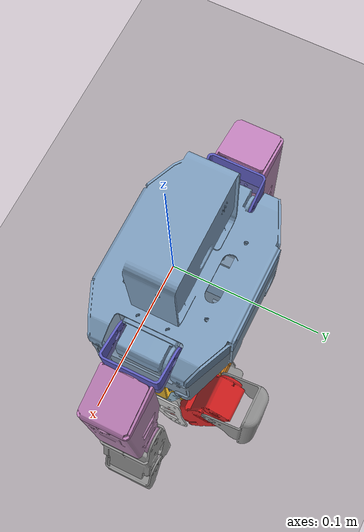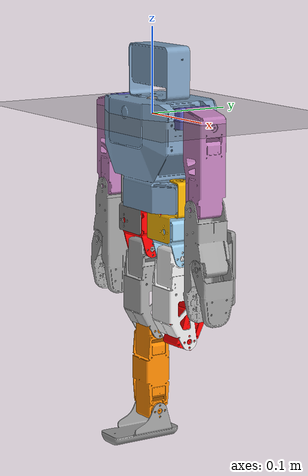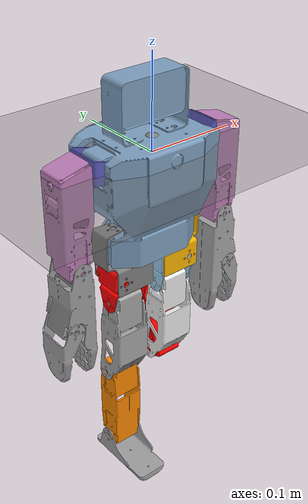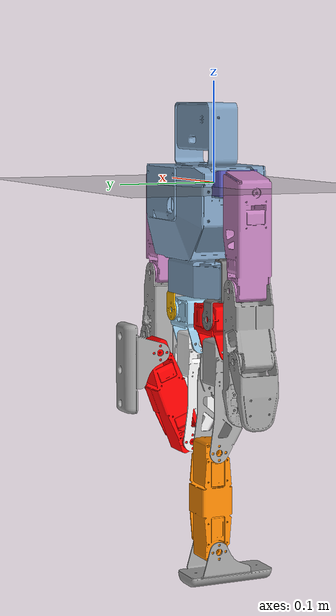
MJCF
<mujoco model="assembly_1">
  <option iterations="50" timestep="0.001" solver="PGS" gravity="0 0 -9.81" />

  <compiler angle="radian" meshdir="meshes" eulerseq="zyx" autolimits="true" />

  <default>
    <joint limited="true" damping="0.01" armature="0.01" frictionloss="0.01" />
    <geom condim="4" contype="1" conaffinity="15" friction="0.9 0.2 0.2" solref="0.001 2" />
    <motor ctrllimited="true" />
    <equality solref="0.001 2" />
    <default class="visualgeom">
      <geom material="visualgeom" condim="1" contype="0" conaffinity="0" />
    </default>
  </default>

  <asset>
    <mesh name="Z-BOT2_MASTER-BODY-SKELETON" file="Z-BOT2_MASTER-BODY-SKELETON.stl" />
    <mesh name="Z-BOT2-MASTER-SHOULDER2" file="Z-BOT2-MASTER-SHOULDER2.stl" />
    <mesh name="Z-BOT2-MASTER-SHOULDER2_1" file="Z-BOT2-MASTER-SHOULDER2_1.stl" />
    <mesh name="U-HIP_1" file="U-HIP_1.stl" />
    <mesh name="U-HIP" file="U-HIP.stl" />
    <mesh name="FK-AP-019-25T_11_5" file="FK-AP-019-25T_11_5.stl" />
    <mesh name="FK-AP-019-25T_11_16" file="FK-AP-019-25T_11_16.stl" />
    <mesh name="WJ-DP00-0002-FK-AP-020_7_10" file="WJ-DP00-0002-FK-AP-020_7_10.stl" />
    <mesh name="SJ-WK00-0021TOPCABINETCASE_104_7" file="SJ-WK00-0021TOPCABINETCASE_104_7.stl" />
    <mesh name="SJ-WK00-0023BOTTOMCASE_12_12" file="SJ-WK00-0023BOTTOMCASE_12_12.stl" />
    <mesh name="SJ-WK00-0023BOTTOMCASE_12_8" file="SJ-WK00-0023BOTTOMCASE_12_8.stl" />
    <mesh name="L-ARM_1" file="L-ARM_1.stl" />
    <mesh name="R-ARM-1" file="R-ARM-1.stl" />
    <mesh name="SJ-WK00-0023BOTTOMCASE_12_13" file="SJ-WK00-0023BOTTOMCASE_12_13.stl" />
    <mesh name="WJ-DP00-0002-FK-AP-020_7_8" file="WJ-DP00-0002-FK-AP-020_7_8.stl" />
    <mesh name="FINGER_1" file="FINGER_1.stl" />
    <mesh name="FINGER_1_1" file="FINGER_1_1.stl" />
    <mesh name="FOOT_1" file="FOOT_1.stl" />
    <mesh name="FOOT" file="FOOT.stl" />
    <texture name="texplane" type="2d" builtin="checker" rgb1=".0 .0 .0" rgb2=".8 .8 .8" width="100" height="100" />
    <material name="matplane" reflectance="0." texture="texplane" texrepeat="1 1" texuniform="true" />
    <material name="visualgeom" rgba="0.5 0.9 0.2 1" />
  </asset>

  <worldbody>
    <light directional="true" diffuse="0.4 0.4 0.4" specular="0.1 0.1 0.1" pos="0 0 5.0" dir="0 0 -1" castshadow="false" />
    <light directional="true" diffuse="0.6 0.6 0.6" specular="0.2 0.2 0.2" pos="0 0 4" dir="0 0 -1" />
    <geom name="ground" type="plane" pos="0 0 0" size="100 100 0.001" quat="1 0 0 0" material="matplane" condim="3" conaffinity="15" />
    <camera name="fixed" pos="0 -3.0 0.5" xyaxes="1 0 0 0 0 1" />
    <camera name="track" mode="trackcom" pos="0 -3.0 0.5" xyaxes="1 0 0 0 0 1" />
    <body name="root" pos="0 0 0.01" quat="1 0 0 0">
      <freejoint name="root" />
      <site name="imu" size="0.01" pos="0 0 0" />
      <body name="base" pos="0 0 0" quat="1 0 0 0">
        <geom type="mesh" rgba="0.494118 0.623529 0.74902 1" mesh="Z-BOT2_MASTER-BODY-SKELETON" contype="1" conaffinity="0" density="0" group="1" class="visualgeom" />
        <geom type="mesh" rgba="0.494118 0.623529 0.74902 1" mesh="Z-BOT2_MASTER-BODY-SKELETON" />
        <body name="Z-BOT2-MASTER-SHOULDER2" pos="-0.055995 0.0277897 -0.00952781" quat="0.707107 0.707107 0 0">
          <inertial pos="-0.012788 0.00137412 0.0188002" quat="0.707107 0 0 0.707107" mass="0.00834974" diaginertia="2.70202e-06 2.57079e-06 1.03341e-06" />
          <joint name="right_shoulder_yaw" pos="0 0 0" axis="0 0 1" range="-1.22173 0.349066" actuatorfrcrange="-80 80" />
          <geom type="mesh" rgba="0.364706 0.360784 0.74902 1" mesh="Z-BOT2-MASTER-SHOULDER2" contype="1" conaffinity="0" density="0" group="1" class="visualgeom" />
          <geom type="mesh" rgba="0.364706 0.360784 0.74902 1" mesh="Z-BOT2-MASTER-SHOULDER2" />
          <body name="FK-AP-019-25T_11_5" pos="-0.019845 -0.0049 0.0188" quat="0.707107 0 0.707107 0">
            <inertial pos="-0.000298648 -0.0381355 -0.0187198" quat="0.493042 0.504234 -0.510469 0.492016" mass="0.100412" diaginertia="0.000138677 0.00013787 2.78348e-05" />
            <joint name="right_shoulder_pitch" pos="0 0 0" axis="0 0 1" range="-3.14159 3.14159" actuatorfrcrange="-80 80" />
            <geom type="mesh" rgba="0.74902 0.498039 0.72549 1" mesh="FK-AP-019-25T_11_5" contype="1" conaffinity="0" density="0" group="1" class="visualgeom" />
            <geom type="mesh" rgba="0.74902 0.498039 0.72549 1" mesh="FK-AP-019-25T_11_5" />
            <body name="L-ARM_1" pos="0.0184908 -0.0930056 -0.0183007" quat="0.707107 -0.000415145 -0.707107 -0.000415145">
              <inertial pos="-0.000124773 -0.0571084 0.0194116" quat="0.702587 0.708268 0.0124887 0.0676202" mass="0.09309" diaginertia="0.000111127 0.000103636 2.81822e-05" />
              <joint name="right_elbow_yaw" pos="0 0 0" axis="0 0 1" range="-1.5708 2.0944" actuatorfrcrange="-80 80" />
              <geom type="mesh" rgba="0.627451 0.627451 0.627451 1" mesh="L-ARM_1" contype="1" conaffinity="0" density="0" group="1" class="visualgeom" />
              <geom type="mesh" rgba="0.627451 0.627451 0.627451 1" mesh="L-ARM_1" />
              <body name="FINGER_1" pos="-0.0114518 -0.0663583 0.03704" quat="6.96153e-08 -1 0 0">
                <inertial pos="-0.011478 0.0335721 0.0187996" quat="0.707101 0.707109 -0.00144377 -0.00144376" mass="0.0234852" diaginertia="1.10011e-05 7.76039e-06 4.54686e-06" />
                <joint name="right_gripper" pos="0 0 0" axis="0 0 1" range="-0.349066 0.872665" actuatorfrcrange="-80 80" />
                <geom type="mesh" rgba="0.627451 0.627451 0.627451 1" mesh="FINGER_1" contype="1" conaffinity="0" density="0" group="1" class="visualgeom" />
                <geom type="mesh" rgba="0.627451 0.627451 0.627451 1" mesh="FINGER_1" />
              </body>
            </body>
          </body>
        </body>
        <body name="Z-BOT2-MASTER-SHOULDER2_1" pos="0.055995 0.0277897 -0.00952781" quat="0.707107 0.707107 0 0">
          <inertial pos="0.012788 0.00137412 0.0187998" quat="0.707107 0 0 0.707107" mass="0.00834974" diaginertia="2.70202e-06 2.57079e-06 1.03341e-06" />
          <joint name="left_shoulder_yaw" pos="0 0 0" axis="0 0 1" range="-0.349066 1.22173" actuatorfrcrange="-80 80" />
          <geom type="mesh" rgba="0.364706 0.360784 0.74902 1" mesh="Z-BOT2-MASTER-SHOULDER2_1" contype="1" conaffinity="0" density="0" group="1" class="visualgeom" />
          <geom type="mesh" rgba="0.364706 0.360784 0.74902 1" mesh="Z-BOT2-MASTER-SHOULDER2_1" />
          <body name="FK-AP-019-25T_11_16" pos="0.019845 -0.0049 0.0188" quat="-1.64085e-08 0.707107 -1.64085e-08 -0.707107">
            <inertial pos="-0.000262879 0.0381358 -0.0187109" quat="0.503743 0.492192 -0.49304 0.510786" mass="0.100412" diaginertia="0.000138674 0.000137872 2.78361e-05" />
            <joint name="left_shoulder_pitch" pos="0 0 0" axis="0 0 1" range="-3.14159 3.14159" actuatorfrcrange="-80 80" />
            <geom type="mesh" rgba="0.74902 0.498039 0.72549 1" mesh="FK-AP-019-25T_11_16" contype="1" conaffinity="0" density="0" group="1" class="visualgeom" />
            <geom type="mesh" rgba="0.74902 0.498039 0.72549 1" mesh="FK-AP-019-25T_11_16" />
            <body name="R-ARM-1" pos="0.0186 0.0929838 -0.0183006" quat="1.64085e-08 -0.707107 1.64085e-08 0.707107">
              <inertial pos="0.000115698 -0.0571116 0.0194782" quat="0.704175 0.706724 -0.013208 -0.067114" mass="0.0930899" diaginertia="0.000111135 0.000103623 2.81371e-05" />
              <joint name="left_elbow_yaw" pos="0 0 0" axis="0 0 1" range="-2.0944 1.5708" actuatorfrcrange="-80 80" />
              <geom type="mesh" rgba="0.647059 0.647059 0.647059 1" mesh="R-ARM-1" contype="1" conaffinity="0" density="0" group="1" class="visualgeom" />
              <geom type="mesh" rgba="0.647059 0.647059 0.647059 1" mesh="R-ARM-1" />
              <body name="FINGER_1_1" pos="0.0114518 -0.0663583 0.03614" quat="6.96153e-08 -1 0 0">
                <inertial pos="0.0107265 0.0338197 0.0187997" quat="0.707089 0.707081 0.00558986 0.00558992" mass="0.0234852" diaginertia="1.10409e-05 7.76039e-06 4.50715e-06" />
                <joint name="left_gripper" pos="0 0 0" axis="0 0 1" range="-0.872665 0.349066" actuatorfrcrange="-80 80" />
                <geom type="mesh" rgba="0.627451 0.627451 0.627451 1" mesh="FINGER_1_1" contype="1" conaffinity="0" density="0" group="1" class="visualgeom" />
                <geom type="mesh" rgba="0.627451 0.627451 0.627451 1" mesh="FINGER_1_1" />
              </body>
            </body>
          </body>
        </body>
        <body name="U-HIP_1" pos="-0.0430082 0.00764973 -0.121818">
          <inertial pos="-0.00115269 -0.00439829 0.00200381" quat="0.921256 -0.220575 -0.207866 0.243773" mass="0.0163312" diaginertia="1.19463e-05 1.0538e-05 4.3781e-06" />
          <joint name="right_hip_roll" pos="0 0 0" axis="0 0 1" range="-1.0472 1.0472" actuatorfrcrange="-80 80" />
          <geom type="mesh" rgba="0.498039 0.498039 0.498039 1" mesh="U-HIP_1" contype="1" conaffinity="0" density="0" group="1" class="visualgeom" />
          <geom type="mesh" rgba="0.498039 0.498039 0.498039 1" mesh="U-HIP_1" />
          <body name="WJ-DP00-0002-FK-AP-020_7_10" pos="-3.37375e-05 0.0186996 -0.019" quat="0.707107 -0.707106 -0.000637873 0.000637873">
            <inertial pos="0.0127214 0.00504099 -0.0189626" quat="-0.130136 0.695377 -0.127713 0.69513" mass="0.042114" diaginertia="1.49345e-05 1.45211e-05 1.11976e-05" />
            <joint name="right_hip_yaw" pos="0 0 0" axis="0 0 1" range="-0.174533 1.91986" actuatorfrcrange="-80 80" />
            <geom type="mesh" rgba="1 0 0 1" mesh="WJ-DP00-0002-FK-AP-020_7_10" contype="1" conaffinity="0" density="0" group="1" class="visualgeom" />
            <geom type="mesh" rgba="1 0 0 1" mesh="WJ-DP00-0002-FK-AP-020_7_10" />
            <body name="SJ-WK00-0023BOTTOMCASE_12_12" pos="0.0302 0.032 -0.0187" quat="0.707107 -1.89469e-08 0.707107 1.89469e-08">
              <inertial pos="0.00209202 0.035417 -0.0187783" quat="0.701644 0.711918 -0.0202304 -0.0214378" mass="0.0681156" diaginertia="7.02957e-05 6.20592e-05 2.05083e-05" />
              <joint name="right_hip_pitch" pos="0 0 0" axis="0 0 1" range="-1.74533 1.8326" actuatorfrcrange="-80 80" />
              <geom type="mesh" rgba="0.647059 0.647059 0.647059 1" mesh="SJ-WK00-0023BOTTOMCASE_12_12" contype="1" conaffinity="0" density="0" group="1" class="visualgeom" />
              <geom type="mesh" rgba="0.647059 0.647059 0.647059 1" mesh="SJ-WK00-0023BOTTOMCASE_12_12" />
              <body name="SJ-WK00-0023BOTTOMCASE_12_13" pos="-0.01 0.1 0.00046">
                <inertial pos="9.44992e-05 0.0499999 -0.0190611" quat="0.707107 0.707107 -0.00046668 -0.00046668" mass="0.0813252" diaginertia="0.000116138 0.000110882 1.96816e-05" />
                <joint name="right_knee_pitch" pos="0 0 0" axis="0 0 1" range="-0.174533 2.96706" actuatorfrcrange="-80 80" />
                <geom type="mesh" rgba="0.972549 0.529412 0.00392157 1" mesh="SJ-WK00-0023BOTTOMCASE_12_13" contype="1" conaffinity="0" density="0" group="1" class="visualgeom" />
                <geom type="mesh" rgba="0.972549 0.529412 0.00392157 1" mesh="SJ-WK00-0023BOTTOMCASE_12_13" />
                <body name="FOOT_1" pos="0.000188998 0.0999998 1.34679e-09" quat="2.32051e-08 -1 0 0">
                  <inertial pos="0.0144604 -0.0260775 0.0187" quat="0.504353 0.50362 0.49568 0.496282" mass="0.0548319" diaginertia="4.02044e-05 3.53499e-05 1.08945e-05" />
                  <joint name="right_ankle_pitch" pos="0 0 0" axis="0 0 1" range="-1.5708 1.5708" actuatorfrcrange="-80 80" />
                  <geom type="mesh" rgba="0.627451 0.627451 0.627451 1" mesh="FOOT_1" contype="1" conaffinity="0" density="0" group="1" class="visualgeom" />
                  <geom type="mesh" rgba="0.627451 0.627451 0.627451 1" mesh="FOOT_1" />
                </body>
              </body>
            </body>
          </body>
        </body>
        <body name="U-HIP" pos="0.0428682 0.00764973 -0.121818">
          <inertial pos="0.00116062 -0.0043962 0.00200381" quat="0.921476 -0.220762 0.207667 -0.242942" mass="0.0163312" diaginertia="1.19463e-05 1.0538e-05 4.3781e-06" />
          <joint name="left_hip_roll" pos="0 0 0" axis="0 0 1" range="-1.0472 1.0472" actuatorfrcrange="-80 80" />
          <geom type="mesh" rgba="0.980392 0.713726 0.00392157 1" mesh="U-HIP" contype="1" conaffinity="0" density="0" group="1" class="visualgeom" />
          <geom type="mesh" rgba="0.980392 0.713726 0.00392157 1" mesh="U-HIP" />
          <body name="SJ-WK00-0021TOPCABINETCASE_104_7" pos="0 0.0186997 -0.019" quat="0.707107 -0.707107 0 0">
            <inertial pos="-0.0127214 0.0050623 -0.0189626" quat="-0.130174 0.694666 -0.132585 0.694921" mass="0.042114" diaginertia="1.49265e-05 1.452e-05 1.11885e-05" />
            <joint name="left_hip_yaw" pos="0 0 0" axis="0 0 1" range="-1.91986 0.174533" actuatorfrcrange="-80 80" />
            <geom type="mesh" rgba="0.615686 0.811765 0.929412 1" mesh="SJ-WK00-0021TOPCABINETCASE_104_7" contype="1" conaffinity="0" density="0" group="1" class="visualgeom" />
            <geom type="mesh" rgba="0.615686 0.811765 0.929412 1" mesh="SJ-WK00-0021TOPCABINETCASE_104_7" />
            <body name="SJ-WK00-0023BOTTOMCASE_12_8" pos="-0.0302 0.032 -0.0187" quat="0.5 0.5 -0.5 -0.5">
              <inertial pos="-0.035417 -0.00207884 -0.0189758" quat="0.483211 0.486671 0.515854 0.513374" mass="0.0681156" diaginertia="7.02906e-05 6.20557e-05 2.05094e-05" />
              <joint name="left_hip_pitch" pos="0 0 0" axis="0 0 1" range="-1.8326 1.74533" actuatorfrcrange="-80 80" />
              <geom type="mesh" rgba="0.917647 0.917647 0.917647 1" mesh="SJ-WK00-0023BOTTOMCASE_12_8" contype="1" conaffinity="0" density="0" group="1" class="visualgeom" />
              <geom type="mesh" rgba="0.917647 0.917647 0.917647 1" mesh="SJ-WK00-0023BOTTOMCASE_12_8" />
              <body name="WJ-DP00-0002-FK-AP-020_7_8" pos="-0.1 0.01 -5.99991e-05" quat="1 4.64102e-08 0 0">
                <inertial pos="0.0467383 0.0177632 -0.0190611" quat="0.403192 0.403192 0.580893 0.580893" mass="0.0813252" diaginertia="0.000115585 0.000110882 2.02347e-05" />
                <joint name="left_knee_pitch" pos="0 0 0" axis="0 0 1" range="-0.174533 2.96706" actuatorfrcrange="-80 80" />
                <geom type="mesh" rgba="1 0 0 1" mesh="WJ-DP00-0002-FK-AP-020_7_8" contype="1" conaffinity="0" density="0" group="1" class="visualgeom" />
                <geom type="mesh" rgba="1 0 0 1" mesh="WJ-DP00-0002-FK-AP-020_7_8" />
                <body name="FOOT" pos="0.0934766 0.0355265 3.3477e-11" quat="1.64085e-08 -0.707107 0.707107 1.64085e-08">
                  <inertial pos="-0.026105 0.0144108 0.0187" quat="0.70708 0.70708 0.00611849 0.00611849" mass="0.0548319" diaginertia="4.02001e-05 3.535e-05 1.08986e-05" />
                  <joint name="left_ankle__pitch" pos="0 0 0" axis="0 0 1" range="-1.5708 1.5708" actuatorfrcrange="-80 80" />
                  <geom type="mesh" rgba="0.627451 0.627451 0.627451 1" mesh="FOOT" contype="1" conaffinity="0" density="0" group="1" class="visualgeom" />
                  <geom type="mesh" rgba="0.627451 0.627451 0.627451 1" mesh="FOOT" />
                </body>
              </body>
            </body>
          </body>
        </body>
      </body>
    </body>
  </worldbody>

  <actuator>
    <motor name="right_shoulder_yaw" joint="right_shoulder_yaw" ctrllimited="true" ctrlrange="-80 80" gear="1" />
    <motor name="right_shoulder_pitch" joint="right_shoulder_pitch" ctrllimited="true" ctrlrange="-80 80" gear="1" />
    <motor name="right_elbow_yaw" joint="right_elbow_yaw" ctrllimited="true" ctrlrange="-80 80" gear="1" />
    <motor name="right_gripper" joint="right_gripper" ctrllimited="true" ctrlrange="-80 80" gear="1" />
    <motor name="left_shoulder_yaw" joint="left_shoulder_yaw" ctrllimited="true" ctrlrange="-80 80" gear="1" />
    <motor name="left_shoulder_pitch" joint="left_shoulder_pitch" ctrllimited="true" ctrlrange="-80 80" gear="1" />
    <motor name="left_elbow_yaw" joint="left_elbow_yaw" ctrllimited="true" ctrlrange="-80 80" gear="1" />
    <motor name="left_gripper" joint="left_gripper" ctrllimited="true" ctrlrange="-80 80" gear="1" />
    <motor name="right_hip_roll" joint="right_hip_roll" ctrllimited="true" ctrlrange="-80 80" gear="1" />
    <motor name="right_hip_yaw" joint="right_hip_yaw" ctrllimited="true" ctrlrange="-80 80" gear="1" />
    <motor name="right_hip_pitch" joint="right_hip_pitch" ctrllimited="true" ctrlrange="-80 80" gear="1" />
    <motor name="right_knee_pitch" joint="right_knee_pitch" ctrllimited="true" ctrlrange="-80 80" gear="1" />
    <motor name="right_ankle_pitch" joint="right_ankle_pitch" ctrllimited="true" ctrlrange="-80 80" gear="1" />
    <motor name="left_hip_roll" joint="left_hip_roll" ctrllimited="true" ctrlrange="-80 80" gear="1" />
    <motor name="left_hip_yaw" joint="left_hip_yaw" ctrllimited="true" ctrlrange="-80 80" gear="1" />
    <motor name="left_hip_pitch" joint="left_hip_pitch" ctrllimited="true" ctrlrange="-80 80" gear="1" />
    <motor name="left_knee_pitch" joint="left_knee_pitch" ctrllimited="true" ctrlrange="-80 80" gear="1" />
    <motor name="left_ankle__pitch" joint="left_ankle__pitch" ctrllimited="true" ctrlrange="-80 80" gear="1" />
  </actuator>

  <sensor>
    <actuatorpos name="right_shoulder_yaw_p" actuator="right_shoulder_yaw" />
    <actuatorvel name="right_shoulder_yaw_v" actuator="right_shoulder_yaw" />
    <actuatorfrc name="right_shoulder_yaw_f" actuator="right_shoulder_yaw" noise="0.001" />
    <actuatorpos name="right_shoulder_pitch_p" actuator="right_shoulder_pitch" />
    <actuatorvel name="right_shoulder_pitch_v" actuator="right_shoulder_pitch" />
    <actuatorfrc name="right_shoulder_pitch_f" actuator="right_shoulder_pitch" noise="0.001" />
    <actuatorpos name="right_elbow_yaw_p" actuator="right_elbow_yaw" />
    <actuatorvel name="right_elbow_yaw_v" actuator="right_elbow_yaw" />
    <actuatorfrc name="right_elbow_yaw_f" actuator="right_elbow_yaw" noise="0.001" />
    <actuatorpos name="right_gripper_p" actuator="right_gripper" />
    <actuatorvel name="right_gripper_v" actuator="right_gripper" />
    <actuatorfrc name="right_gripper_f" actuator="right_gripper" noise="0.001" />
    <actuatorpos name="left_shoulder_yaw_p" actuator="left_shoulder_yaw" />
    <actuatorvel name="left_shoulder_yaw_v" actuator="left_shoulder_yaw" />
    <actuatorfrc name="left_shoulder_yaw_f" actuator="left_shoulder_yaw" noise="0.001" />
    <actuatorpos name="left_shoulder_pitch_p" actuator="left_shoulder_pitch" />
    <actuatorvel name="left_shoulder_pitch_v" actuator="left_shoulder_pitch" />
    <actuatorfrc name="left_shoulder_pitch_f" actuator="left_shoulder_pitch" noise="0.001" />
    <actuatorpos name="left_elbow_yaw_p" actuator="left_elbow_yaw" />
    <actuatorvel name="left_elbow_yaw_v" actuator="left_elbow_yaw" />
    <actuatorfrc name="left_elbow_yaw_f" actuator="left_elbow_yaw" noise="0.001" />
    <actuatorpos name="left_gripper_p" actuator="left_gripper" />
    <actuatorvel name="left_gripper_v" actuator="left_gripper" />
    <actuatorfrc name="left_gripper_f" actuator="left_gripper" noise="0.001" />
    <actuatorpos name="right_hip_roll_p" actuator="right_hip_roll" />
    <actuatorvel name="right_hip_roll_v" actuator="right_hip_roll" />
    <actuatorfrc name="right_hip_roll_f" actuator="right_hip_roll" noise="0.001" />
    <actuatorpos name="right_hip_yaw_p" actuator="right_hip_yaw" />
    <actuatorvel name="right_hip_yaw_v" actuator="right_hip_yaw" />
    <actuatorfrc name="right_hip_yaw_f" actuator="right_hip_yaw" noise="0.001" />
    <actuatorpos name="right_hip_pitch_p" actuator="right_hip_pitch" />
    <actuatorvel name="right_hip_pitch_v" actuator="right_hip_pitch" />
    <actuatorfrc name="right_hip_pitch_f" actuator="right_hip_pitch" noise="0.001" />
    <actuatorpos name="right_knee_pitch_p" actuator="right_knee_pitch" />
    <actuatorvel name="right_knee_pitch_v" actuator="right_knee_pitch" />
    <actuatorfrc name="right_knee_pitch_f" actuator="right_knee_pitch" noise="0.001" />
    <actuatorpos name="right_ankle_pitch_p" actuator="right_ankle_pitch" />
    <actuatorvel name="right_ankle_pitch_v" actuator="right_ankle_pitch" />
    <actuatorfrc name="right_ankle_pitch_f" actuator="right_ankle_pitch" noise="0.001" />
    <actuatorpos name="left_hip_roll_p" actuator="left_hip_roll" />
    <actuatorvel name="left_hip_roll_v" actuator="left_hip_roll" />
    <actuatorfrc name="left_hip_roll_f" actuator="left_hip_roll" noise="0.001" />
    <actuatorpos name="left_hip_yaw_p" actuator="left_hip_yaw" />
    <actuatorvel name="left_hip_yaw_v" actuator="left_hip_yaw" />
    <actuatorfrc name="left_hip_yaw_f" actuator="left_hip_yaw" noise="0.001" />
    <actuatorpos name="left_hip_pitch_p" actuator="left_hip_pitch" />
    <actuatorvel name="left_hip_pitch_v" actuator="left_hip_pitch" />
    <actuatorfrc name="left_hip_pitch_f" actuator="left_hip_pitch" noise="0.001" />
    <actuatorpos name="left_knee_pitch_p" actuator="left_knee_pitch" />
    <actuatorvel name="left_knee_pitch_v" actuator="left_knee_pitch" />
    <actuatorfrc name="left_knee_pitch_f" actuator="left_knee_pitch" noise="0.001" />
    <actuatorpos name="left_ankle__pitch_p" actuator="left_ankle__pitch" />
    <actuatorvel name="left_ankle__pitch_v" actuator="left_ankle__pitch" />
    <actuatorfrc name="left_ankle__pitch_f" actuator="left_ankle__pitch" noise="0.001" />
    <framequat name="orientation" objtype="site" noise="0.001" objname="imu" />
    <gyro name="angular-velocity" site="imu" noise="0.005" cutoff="34.9" />
  </sensor>
</mujoco>
